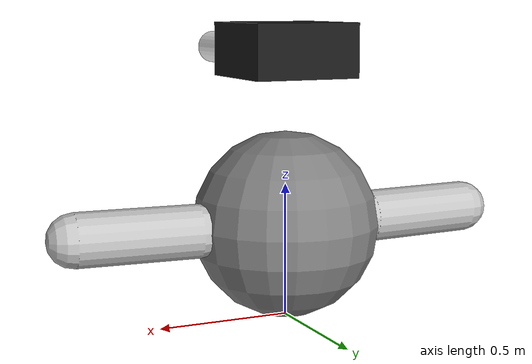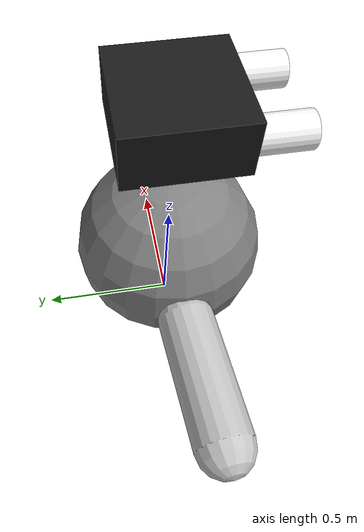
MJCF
<mujoco model='boxhead'>
  <default>
    <mesh scale='.01 .01 .01'/>
    <geom contype='1' conaffinity='1' condim='4' friction='.5 .02 .02'/>
    <default class='root'>
      <joint pos='0 0 0' limited='false' armature='0' damping='0' stiffness='0'/>
    </default>
  </default>
  <worldbody>
    <body pos='0 0 1.0' quat='1 0 0 -1' name='head_body'>
      <camera name="float_far"  pos="-4 0 2" xyaxes="0 -1 0 .5 0 1" fovy="90"/>
      <body name='egocentric_camera' pos='0 0 0.4' xyaxes='0 -1 0 0 0 1'>
        <inertial pos='0 0 0' mass='1' diaginertia='1 1 1'/>
        <joint name='camera_yaw' type='hinge' axis='0 1 0' limited='false'/>
        <joint name='camera_pitch' type='hinge' axis='1 0 0' limited='true' range='-0.35 0.00'/>
        <geom type='cylinder' name='eye_l' pos='-.14 -0.4 -0.171' size="0.06 0.2" rgba='1 1 1 1' mass='0' contype="0" conaffinity="0"/>
        <geom type='cylinder' name='eye_r' pos='.14 -0.4 -0.171' size="0.06 0.2" rgba='1 1 1 1' mass='0' contype="0" conaffinity="0"/>
        <camera name='egocentric' fovy='80'/>
      </body>
      <camera name='tracking' pos='1.5 1.5 .7' xyaxes='-1 1 0 -1 -1 4' mode='trackcom'/>
      <joint name='steer' type='hinge' axis='0 0 -1' class="root" damping="4"/>
      <geom type='box' group='5' name='top_down_cam_box' pos='0 0 2' size="1. 1. 0.1" rgba='.1 .1 .1 1' mass='0' contype="0" conaffinity="0"/>
      <geom type='box' name='head' pos='0 0 0' size="0.2 0.2 0.1" rgba='.1 .1 .1 1' mass='20' contype="1" conaffinity="1"/>
      <site name='torso_site' pos='0 0 0' size='0.05' rgba='1 0 0 1' group='4'/>
      <body pos='0 0 0.05' name='torso'>
        <!-- wheel -->
        <joint name='kick' type='slide' damping='100' limited='true' range='0 .4' axis="0 0 -1" stiffness="0" solimplimit=".95 .99 .001" springref="-.4"/>
        <geom name='arm_l' type='capsule' fromto='0  .35 -.7 .03  .8 -.7' size='.1' rgba='.76 .76 .76 1' density='10'/>
        <geom name='arm_r' type='capsule' fromto='0 -.35 -.7 .03 -.8 -.7' size='.1' rgba='.76 .76 .76 1' density='10'/>
        <body name='ball' pos='0 0 -0.7'>
          <joint name='roll' type='hinge' axis='0 1 0' damping='2'/>
          <geom name='shell' type='sphere' size='.35' density='100' condim='4' friction='.5 .02 .02'/>
        </body>
      </body>
    </body>
  </worldbody>
  <sensor>
    <velocimeter site="torso_site" name="sensor_torso_vel"/>
    <gyro site="torso_site" name="sensor_torso_gyro"/>
    <accelerometer site="torso_site" name="sensor_torso_accel"/>
  </sensor>
  <actuator>
    <general name='roll' joint='roll' ctrlrange='-1 1' ctrllimited='true' gear='-30' biasprm="0" biastype="affine"/>
    <motor name='steer' joint='steer' ctrlrange='-1 1' ctrllimited='true' gear='55'/>
    <general name='kick' joint='kick' ctrlrange='-1 1' ctrllimited='true' gear='1200' biasprm="0" biastype="affine"/>
    <velocity name='camera_yaw' joint='camera_yaw' ctrlrange='-1 1' ctrllimited='true'/>
    <velocity name='camera_pitch' joint='camera_pitch' ctrlrange='-1 1' ctrllimited='true'/>
  </actuator>
</mujoco>
